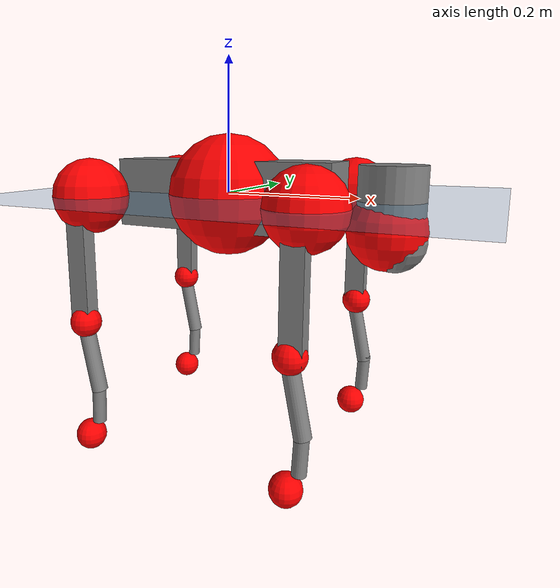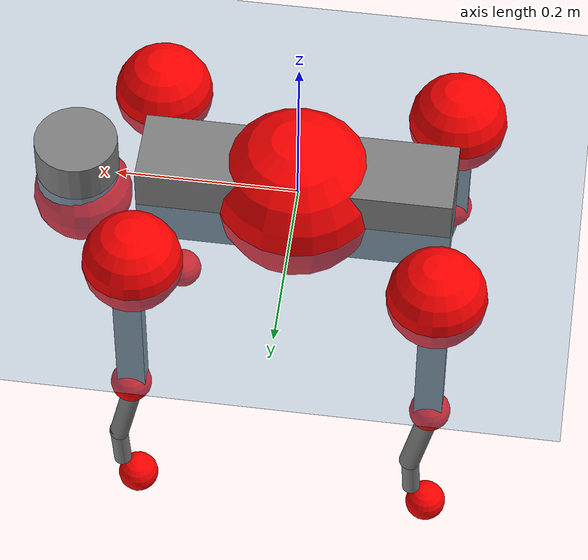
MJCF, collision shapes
<mujoco model="go2">
  <compiler angle="radian" assetdir="assets" balanceinertia="true" inertiafromgeom="false"/>

  <option timestep="0.005" density="1.2" viscosity="2e-05"/>

  <size nkey="1"/>

  <visual>
    <quality shadowsize="8192"/>
    <map shadowclip="0.5"/>
  </visual>

  <default>
    <default class="/">
      <geom contype="0" conaffinity="0" group="1" solref="-1000 -80"/>
      <site size="0.01 0.005 0.005" group="5"/>
      <general forcelimited="true" biastype="affine" gainprm="20" biasprm="0 -20 -0.5"/>
      <default class="go2">
        <joint armature="0.01" damping="0.01" frictionloss="0.2"/>
        <geom condim="1" margin="0.001"/>
        <default class="visual">
          <geom type="mesh" group="2"/>
        </default>
        <default class="collision">
          <geom group="3"/>
          <default class="foot">
            <geom size="0.022 0 0" condim="6" priority="1" friction="0.8 0.02 0.01" solimp="0.015 1 0.022"/>
          </default>
        </default>
        <default class="reward_collision_sphere">
          <geom group="5" rgba="1 0 0 1"/>
        </default>
      </default>
    </default>
  </default>

  <asset>
    <texture type="skybox" colorspace="auto" name="//unnamed_texture_0" builtin="gradient" rgb1="0.95 0.95 0.95" rgb2="0.95 0.95 0.95" width="100" height="600"/>
    <texture type="2d" colorspace="auto" name="texplane" builtin="checker" rgb1="0.345 0.575 0.748" rgb2="0.345 0.575 0.748" markrgb="1 1 1" width="512" height="512"/>
    <material name="MatPlane" class="/" texture="texplane" texuniform="true" texrepeat="2 2" specular="0.9"/>
    <material name="metal" class="/" rgba="0.9 0.95 0.95 1"/>
    <material name="black" class="/" rgba="0 0 0 1"/>
    <material name="white" class="/"/>
    <material name="gray" class="/" rgba="0.671705 0.692426 0.77427 1"/>
    <mesh name="base_0" class="/" file="base_0.obj"/>
    <mesh name="base_1" class="/" file="base_1.obj"/>
    <mesh name="base_2" class="/" file="base_2.obj"/>
    <mesh name="base_3" class="/" file="base_3.obj"/>
    <mesh name="base_4" class="/" file="base_4.obj"/>
    <mesh name="hip_0" class="/" file="hip_0.obj"/>
    <mesh name="hip_1" class="/" file="hip_1.obj"/>
    <mesh name="thigh_0" class="/" file="thigh_0.obj"/>
    <mesh name="thigh_1" class="/" file="thigh_1.obj"/>
    <mesh name="thigh_mirror_0" class="/" file="thigh_mirror_0.obj"/>
    <mesh name="thigh_mirror_1" class="/" file="thigh_mirror_1.obj"/>
    <mesh name="calf_0" class="/" file="calf_0.obj"/>
    <mesh name="calf_1" class="/" file="calf_1.obj"/>
    <mesh name="calf_mirror_0" class="/" file="calf_mirror_0.obj"/>
    <mesh name="calf_mirror_1" class="/" file="calf_mirror_1.obj"/>
    <mesh name="foot" class="/" file="foot.obj"/>
  </asset>

  <worldbody>
    <geom name="floor" class="/" size="100 100 0.125" type="plane" group="0" material="MatPlane"/>
    <light name="toplight_shadow" class="/" pos="0 0 5" dir="0.0990148 0.0990148 -0.990148" type="directional" ambient="0.04 0.04 0.04" diffuse="0.55 0.55 0.55" specular="0.12 0.12 0.12"/>
    <light name="toplight_fill" class="/" pos="0 0 5" dir="0.0990148 0.0990148 -0.990148" type="directional" castshadow="false" ambient="0.04 0.04 0.04" diffuse="0.3 0.3 0.3" specular="0.08 0.08 0.08"/>
    <body name="trunk" childclass="go2" pos="0.000839989 -0.0020855 -0.00246504" quat="0.999999 0.000133463 0.000548482 -0.000860475">
      <inertial pos="0.0152703 0.00113172 -0.00289539" quat="-0.000458464 0.70431 -0.00101909 0.709892" mass="5.45" diaginertia="0.0500275 0.115735 0.0116447"/>
      <joint name="//unnamed_joint_0" type="free" armature="0" damping="0" frictionloss="0"/>
      <geom name="//unnamed_geom_1" class="visual" material="black" mesh="base_0"/>
      <geom name="//unnamed_geom_2" class="visual" material="black" mesh="base_1"/>
      <geom name="//unnamed_geom_3" class="visual" material="black" mesh="base_2"/>
      <geom name="//unnamed_geom_4" class="visual" material="white" mesh="base_3"/>
      <geom name="//unnamed_geom_5" class="visual" material="gray" mesh="base_4"/>
      <geom name="trunk_1" class="collision" size="0.172088 0.0427704 0.0521478" type="box"/>
      <geom name="trunk_2" class="collision" size="0.0457437 0.0411693" pos="0.243618 0 0.00858242" type="cylinder"/>
      <geom name="trunk_3" class="collision" size="0.0429991" pos="0.250457 0 -0.0514945"/>
      <geom name="//unnamed_geom_9" class="reward_collision_sphere" size="0.0914874"/>
      <geom name="//unnamed_geom_10" class="reward_collision_sphere" size="0.0548924" pos="0.239344 0 -0.0386209"/>
      <site name="imu" pos="-0.0219543 -0.0034794 0.0327778" size="0.00914874"/>
      <camera name="track" pos="0 -2.06316 0" quat="0.707107 0.707107 0 0" mode="trackcom"/>
      <camera name="ego_camera" pos="0.266698 0 0.0386209" quat="-0.5 -0.5 0.5 0.5"/>
      <body name="FL_hip" pos="0.163327 0.046512 4.89309e-06" quat="1 3.39137e-05 0.000128631 -6.21015e-05">
        <inertial pos="-0.00399581 0.00117328 -0.00102821" quat="0.500618 0.497299 0.511311 0.490548" mass="0.523269" diaginertia="0.000414591 0.000685862 0.000230385"/>
        <joint name="FL_hip_joint" pos="0 0 0" axis="0.999924 -0.0101715 0.00691247" range="-1.10356 1.025" armature="0.00952158" damping="0.0168382" frictionloss="0.187723"/>
        <geom name="//unnamed_geom_11" class="visual" material="metal" mesh="hip_0"/>
        <geom name="//unnamed_geom_12" class="visual" material="gray" mesh="hip_1"/>
        <geom name="//unnamed_geom_13" class="collision" size="0.0420842 0.0182975" pos="0 0.0825263 0" quat="0.707107 0.707107 0 0" type="cylinder"/>
        <geom name="//unnamed_geom_14" class="reward_collision_sphere" size="0.0548924" pos="0 0.0722105 0"/>
        <body name="FL_thigh" pos="0.000971804 0.10097 0.000667221" quat="1 -0.00051905 -0.000458538 -4.45492e-05">
          <inertial pos="-0.00255471 -0.0245518 -0.0283303" quat="0.829886 0.0783633 -0.00794255 0.552345" mass="0.905327" diaginertia="0.00268758 0.00669681 0.000407856"/>
          <joint name="FL_thigh_joint" pos="0 0 0" axis="-0.00997552 0.999947 0.00234274" stiffness="0.0156079" range="-1.61104 3.49565" armature="0.00861514" damping="0.0139415" frictionloss="0.159369"/>
          <geom name="//unnamed_geom_15" class="visual" material="metal" mesh="thigh_0"/>
          <geom name="//unnamed_geom_16" class="visual" material="gray" mesh="thigh_1"/>
          <geom name="//unnamed_geom_17" class="collision" size="0.0974341 0.0112072 0.0155529" pos="0 0 -0.0914028" quat="0.707107 0 0.707107 0" type="box"/>
          <body name="FL_calf" pos="0.00195946 0.000637837 -0.184129" quat="1 -0.000297287 -0.000135213 -6.18625e-05">
            <inertial pos="0.00511203 -0.00295373 -0.122247" quat="0.708243 -0.000429761 0.00820119 0.705921" mass="0.185394" diaginertia="0.000663321 0.001655 2.40343e-05"/>
            <joint name="FL_calf_joint" pos="0 0 0" axis="2.02658e-05 1 -8.41658e-05" stiffness="0.00824637" range="-2.75335 -0.815641" armature="0.00784556" damping="0.00303869" frictionloss="0.20647"/>
            <geom name="//unnamed_geom_18" class="visual" material="gray" mesh="calf_0"/>
            <geom name="//unnamed_geom_19" class="visual" material="black" mesh="calf_1"/>
            <geom name="FL_calf0" class="collision" size="0.0109785 0.0548924" pos="0.00683841 0 -0.0514945" quat="0.994493 0 -0.104807 0" type="cylinder"/>
            <geom name="//unnamed_geom_21" class="collision" size="0.0100636 0.0297334" pos="0.017096 0 -0.12702" quat="0.999688 0 0.0249974 0" type="cylinder"/>
            <geom name="//unnamed_geom_22" class="visual" pos="0 0 -0.182806" quat="1 0 0 0" material="black" mesh="foot"/>
            <geom name="FL_foot" class="foot" size="0.0159786" pos="-0.0017096 0 -0.182806"/>
            <geom name="//unnamed_geom_24" class="reward_collision_sphere" size="0.0228719"/>
            <geom name="//unnamed_geom_25" class="reward_collision_sphere" size="0.0228719" pos="-0.0017096 0 -0.182806"/>
            <site name="FL_foot" class="foot" pos="-0.0017096 0 -0.182806" size="0.00914874"/>
          </body>
        </body>
      </body>
      <body name="FR_hip" pos="0.166483 -0.0502869 -0.000580849" quat="1 -0.000186186 0.000387639 -0.000334121">
        <inertial pos="-0.00465422 0.000851715 -0.00302856" quat="0.498284 0.505492 0.499275 0.496906" mass="0.495844" diaginertia="0.000389654 0.000696401 0.000228204"/>
        <joint name="FR_hip_joint" pos="0 0 0" axis="0.999926 -0.0107496 0.00575339" stiffness="0.0123155" range="-1.04193 1.06209" armature="0.0078974" damping="0.0168457" frictionloss="0.204153"/>
        <geom name="//unnamed_geom_26" class="visual" pos="0 1.51004e-09 6.47687e-08" quat="4.63268e-05 1 0 0" material="metal" mesh="hip_0"/>
        <geom name="//unnamed_geom_27" class="visual" pos="0 2.44795e-09 -1.60198e-07" quat="4.63268e-05 1 0 0" material="gray" mesh="hip_1"/>
        <geom name="//unnamed_geom_28" class="collision" size="0.0420842 0.0182975" pos="0 -0.0825263 0" quat="0.707107 0.707107 0 0" type="cylinder"/>
        <geom name="//unnamed_geom_29" class="reward_collision_sphere" size="0.0548924" pos="0 -0.0722105 0"/>
        <body name="FR_thigh" pos="-0.00202453 -0.0986505 0.00322158" quat="1 -7.84702e-05 -1.98255e-05 -6.69519e-05">
          <inertial pos="-0.000419613 0.0209086 -0.028442" quat="0.54296 -0.0184462 0.0772489 0.835994" mass="0.902656" diaginertia="0.00262879 0.00678115 0.00040658"/>
          <joint name="FR_thigh_joint" pos="0 0 0" axis="-0.00149707 -0.999998 0.0015911" range="-3.47229 1.61759" armature="0.00909847" damping="0.0103091" frictionloss="0.161726"/>
          <geom name="//unnamed_geom_30" class="visual" material="metal" mesh="thigh_mirror_0"/>
          <geom name="//unnamed_geom_31" class="visual" material="gray" mesh="thigh_mirror_1"/>
          <geom name="//unnamed_geom_32" class="collision" size="0.0974341 0.0112072 0.0155529" pos="0 0 -0.0914028" quat="0.707107 0 0.707107 0" type="box"/>
          <body name="FR_calf" pos="-0.00352043 -0.000102979 -0.181823" quat="1 -7.12218e-05 -0.000314115 -0.000833464">
            <inertial pos="0.00309845 0.00277711 -0.121962" quat="0.694188 -0.00571909 0.00603815 0.719746" mass="0.182089" diaginertia="0.000645855 0.00172004 2.35999e-05"/>
            <joint name="FR_calf_joint" pos="0 0 0" axis="0.00218964 -0.999982 -0.00552965" range="0.886319 2.76404" armature="0.00877989" damping="0.00747629" frictionloss="0.158427"/>
            <geom name="//unnamed_geom_33" class="visual" material="gray" mesh="calf_mirror_0"/>
            <geom name="//unnamed_geom_34" class="visual" material="black" mesh="calf_mirror_1"/>
            <geom name="FR_calf0" class="collision" size="0.0118934 0.0548924" pos="0.00854802 0 -0.0514945" quat="0.995004 0 -0.0998334 0" type="cylinder"/>
            <geom name="//unnamed_geom_36" class="collision" size="0.0100636 0.0297334" pos="0.017096 0 -0.12702" quat="0.999688 0 0.0249974 0" type="cylinder"/>
            <geom name="//unnamed_geom_37" class="visual" pos="0 0 -0.182806" quat="1 0 0 0" material="black" mesh="foot"/>
            <geom name="FR_foot" class="foot" size="0.021427" pos="-0.0017096 0 -0.182806"/>
            <geom name="//unnamed_geom_39" class="reward_collision_sphere" size="0.0228719"/>
            <geom name="//unnamed_geom_40" class="reward_collision_sphere" size="0.0228719" pos="-0.0017096 0 -0.182806"/>
            <site name="FR_foot" class="foot" pos="-0.0017096 0 -0.182806" size="0.00914874"/>
          </body>
        </body>
      </body>
      <body name="RL_hip" pos="-0.165893 0.0505788 -0.000786629" quat="1 0.000102302 7.91535e-05 5.61183e-06">
        <inertial pos="0.00607745 0.000869997 0.00231464" quat="0.509983 0.49295 0.492816 0.504034" mass="0.511497" diaginertia="0.000382486 0.000649634 0.000222704"/>
        <joint name="RL_hip_joint" pos="0 0 0" axis="-0.999728 -0.0159436 -0.0170289" range="-1.03641 0.989635" armature="0.00831806" damping="0.0144761" frictionloss="0.195782"/>
        <geom name="//unnamed_geom_41" class="visual" pos="2.99703e-11 0 5.87488e-09" quat="4.63268e-05 0 1 0" material="metal" mesh="hip_0"/>
        <geom name="//unnamed_geom_42" class="visual" pos="4.85854e-11 0 5.21018e-09" quat="4.63268e-05 0 1 0" material="gray" mesh="hip_1"/>
        <geom name="//unnamed_geom_43" class="collision" size="0.0420842 0.0182975" pos="0 0.0825263 0" quat="0.707107 0.707107 0 0" type="cylinder"/>
        <geom name="//unnamed_geom_44" class="reward_collision_sphere" size="0.0548924" pos="0 0.0722105 0"/>
        <body name="RL_thigh" pos="3.14582e-06 0.0951409 0.00272273" quat="1 -2.89029e-05 7.79953e-05 -9.75116e-05">
          <inertial pos="-0.00338825 -0.0250587 -0.0254072" quat="0.830465 0.0906476 -0.0233497 0.54915" mass="0.890756" diaginertia="0.00261979 0.0070205 0.000409379"/>
          <joint name="RL_thigh_joint" pos="0 0 0" axis="-0.0080227 0.999962 0.00354872" range="-0.53239 4.55671" armature="0.0101137" damping="0.0151637" frictionloss="0.159615"/>
          <geom name="//unnamed_geom_45" class="visual" material="metal" mesh="thigh_0"/>
          <geom name="//unnamed_geom_46" class="visual" material="gray" mesh="thigh_1"/>
          <geom name="//unnamed_geom_47" class="collision" size="0.0974341 0.0112072 0.0155529" pos="0 0 -0.0914028" quat="0.707107 0 0.707107 0" type="box"/>
          <body name="RL_calf" pos="-0.00190176 -0.000634404 -0.182046" quat="0.999999 -0.000927484 0.000855901 -0.000578609">
            <inertial pos="0.00428928 0.000208968 -0.121322" quat="0.711313 0.00368535 -0.00287306 0.70286" mass="0.181533" diaginertia="0.00067356 0.00169609 2.46526e-05"/>
            <joint name="RL_calf_joint" pos="0 0 0" axis="0.00175959 0.999998 -0.00034879" range="-2.7456 -0.849086" armature="0.00849744" damping="0.0126121" frictionloss="0.162655"/>
            <geom name="//unnamed_geom_48" class="visual" material="gray" mesh="calf_0"/>
            <geom name="//unnamed_geom_49" class="visual" material="black" mesh="calf_1"/>
            <geom name="RL_calf0" class="collision" size="0.0118934 0.0548924" pos="0.00854802 0 -0.0514945" quat="0.995004 0 -0.0998334 0" type="cylinder"/>
            <geom name="//unnamed_geom_51" class="collision" size="0.0100636 0.0297334" pos="0.017096 0 -0.12702" quat="0.999688 0 0.0249974 0" type="cylinder"/>
            <geom name="//unnamed_geom_52" class="visual" pos="0 0 -0.182806" quat="1 0 0 0" material="black" mesh="foot"/>
            <geom name="RL_foot" class="foot" size="0.0183877" pos="-0.0017096 0 -0.182806"/>
            <geom name="//unnamed_geom_54" class="reward_collision_sphere" size="0.0228719"/>
            <geom name="//unnamed_geom_55" class="reward_collision_sphere" size="0.0228719" pos="-0.0017096 0 -0.182806"/>
            <site name="RL_foot" class="foot" pos="-0.0017096 0 -0.182806" size="0.00914874"/>
          </body>
        </body>
      </body>
      <body name="RR_hip" pos="-0.164342 -0.0490401 0.000996162" quat="1 0.000334049 0.000913737 0.000151432">
        <inertial pos="0.00396866 -0.00427143 0.000271955" quat="0.497871 0.496023 0.497921 0.508095" mass="0.49939" diaginertia="0.000388436 0.000693331 0.000210543"/>
        <joint name="RR_hip_joint" pos="0 0 0" axis="-0.999999 0.000912454 0.00066251" range="-1.07573 1.08819" armature="0.00903644" damping="0.00673399" frictionloss="0.204573"/>
        <geom name="//unnamed_geom_56" class="visual" pos="-2.38503e-11 1.51004e-09 -5.88938e-08" quat="2.14617e-09 4.63268e-05 4.63268e-05 -1" material="metal" mesh="hip_0"/>
        <geom name="//unnamed_geom_57" class="visual" pos="-6.37231e-11 2.44795e-09 1.65408e-07" quat="2.14617e-09 4.63268e-05 4.63268e-05 -1" material="gray" mesh="hip_1"/>
        <geom name="//unnamed_geom_58" class="collision" size="0.0420842 0.0182975" pos="0 -0.0825263 0" quat="0.707107 0.707107 0 0" type="cylinder"/>
        <geom name="//unnamed_geom_59" class="reward_collision_sphere" size="0.0548924" pos="0 -0.0722105 0"/>
        <body name="RR_thigh" pos="-0.00195952 -0.0976664 -0.00390173" quat="0.999999 0.000799566 -0.000991377 0.000192983">
          <inertial pos="-0.00269954 0.0215743 -0.0272203" quat="0.551515 -0.0185499 0.0807133 0.830044" mass="0.929934" diaginertia="0.00277258 0.00677685 0.000407438"/>
          <joint name="RR_thigh_joint" pos="0 0 0" axis="9.83354e-05 -0.999987 0.00508812" stiffness="0.00107256" range="-4.55375 0.492317" armature="0.00967311" damping="0.0133869" frictionloss="0.187317"/>
          <geom name="//unnamed_geom_60" class="visual" material="metal" mesh="thigh_mirror_0"/>
          <geom name="//unnamed_geom_61" class="visual" material="gray" mesh="thigh_mirror_1"/>
          <geom name="//unnamed_geom_62" class="collision" size="0.0974341 0.0112072 0.0155529" pos="0 0 -0.0914028" quat="0.707107 0 0.707107 0" type="box"/>
          <body name="RR_calf" pos="0.00264961 -0.000991924 -0.181094" quat="1 4.0325e-05 0.000180463 0.000262293">
            <inertial pos="0.00266987 0.00106691 -0.12241" quat="0.70435 -0.00572144 0.000182464 0.70983" mass="0.190775" diaginertia="0.000704009 0.00177854 2.49095e-05"/>
            <joint name="RR_calf_joint" pos="0 0 0" axis="0.0042686 -0.99999 -0.00139884" stiffness="0.00502953" range="0.841129 2.77861" armature="0.00913746" damping="0.00971899" frictionloss="0.206633"/>
            <geom name="//unnamed_geom_63" class="visual" material="gray" mesh="calf_mirror_0"/>
            <geom name="//unnamed_geom_64" class="visual" material="black" mesh="calf_mirror_1"/>
            <geom name="RR_calf0" class="collision" size="0.0118934 0.0548924" pos="0.00854802 0 -0.0514945" quat="0.995004 0 -0.0998334 0" type="cylinder"/>
            <geom name="//unnamed_geom_66" class="collision" size="0.0100636 0.0297334" pos="0.017096 0 -0.12702" quat="0.999688 0 0.0249974 0" type="cylinder"/>
            <geom name="//unnamed_geom_67" class="visual" pos="0 0 -0.182806" quat="1 0 0 0" material="black" mesh="foot"/>
            <geom name="RR_foot" class="foot" size="0.018653" pos="-0.0017096 0 -0.182806"/>
            <geom name="//unnamed_geom_69" class="reward_collision_sphere" size="0.0228719"/>
            <geom name="//unnamed_geom_70" class="reward_collision_sphere" size="0.0228719" pos="-0.0017096 0 -0.182806"/>
            <site name="RR_foot" class="foot" pos="-0.0017096 0 -0.182806" size="0.00914874"/>
          </body>
        </body>
      </body>
    </body>
  </worldbody>

  <contact>
    <pair class="/" geom1="floor" geom2="FL_foot" name="//unnamed_contact_0"/>
    <pair class="/" geom1="floor" geom2="FR_foot" name="//unnamed_contact_1"/>
    <pair class="/" geom1="floor" geom2="RL_foot" name="//unnamed_contact_2"/>
    <pair class="/" geom1="floor" geom2="RR_foot" name="//unnamed_contact_3"/>
  </contact>

  <actuator>
    <general name="FL_hip" class="/" joint="FL_hip_joint" forcerange="-23.8842 23.8842" gainprm="18.6363" biasprm="0 -18.6363 -0.450189"/>
    <general name="FL_thigh" class="/" joint="FL_thigh_joint" forcerange="-21.8206 21.8206" gainprm="18.6363" biasprm="0 -18.6363 -0.450189"/>
    <general name="FL_calf" class="/" joint="FL_calf_joint" forcerange="-40.0409 40.0409" gainprm="18.6363" biasprm="0 -18.6363 -0.450189"/>
    <general name="FR_hip" class="/" joint="FR_hip_joint" forcerange="-19.4611 19.4611" gainprm="18.6363" biasprm="0 -18.6363 -0.450189"/>
    <general name="FR_thigh" class="/" joint="FR_thigh_joint" forcerange="-22.3624 22.3624" gainprm="18.6363" biasprm="0 -18.6363 -0.450189"/>
    <general name="FR_calf" class="/" joint="FR_calf_joint" forcerange="-38.7526 38.7526" gainprm="18.6363" biasprm="0 -18.6363 -0.450189"/>
    <general name="RL_hip" class="/" joint="RL_hip_joint" forcerange="-19.641 19.641" gainprm="18.6363" biasprm="0 -18.6363 -0.450189"/>
    <general name="RL_thigh" class="/" joint="RL_thigh_joint" forcerange="-22.4772 22.4772" gainprm="18.6363" biasprm="0 -18.6363 -0.450189"/>
    <general name="RL_calf" class="/" joint="RL_calf_joint" forcerange="-45.6644 45.6644" gainprm="18.6363" biasprm="0 -18.6363 -0.450189"/>
    <general name="RR_hip" class="/" joint="RR_hip_joint" forcerange="-19.4897 19.4897" gainprm="18.6363" biasprm="0 -18.6363 -0.450189"/>
    <general name="RR_thigh" class="/" joint="RR_thigh_joint" forcerange="-23.8343 23.8343" gainprm="18.6363" biasprm="0 -18.6363 -0.450189"/>
    <general name="RR_calf" class="/" joint="RR_calf_joint" forcerange="-41.4981 41.4981" gainprm="18.6363" biasprm="0 -18.6363 -0.450189"/>
  </actuator>

  <sensor>
    <gyro site="imu" name="imu_angular_velocity"/>
    <velocimeter site="imu" name="imu_linear_velocity"/>
    <framelinvel objtype="site" objname="FL_foot" name="FL_foot_global_linear_velocity"/>
    <framelinvel objtype="site" objname="FR_foot" name="FR_foot_global_linear_velocity"/>
    <framelinvel objtype="site" objname="RL_foot" name="RL_foot_global_linear_velocity"/>
    <framelinvel objtype="site" objname="RR_foot" name="RR_foot_global_linear_velocity"/>
  </sensor>

  <keyframe>
    <key name="home" qpos="0 0 0.325 1 0 0 0 0.1 0.8 -1.5 -0.1 -0.8 1.5 -0.1 0.8 -1.5 0.1 -0.8 1.5"/>
  </keyframe>
</mujoco>
